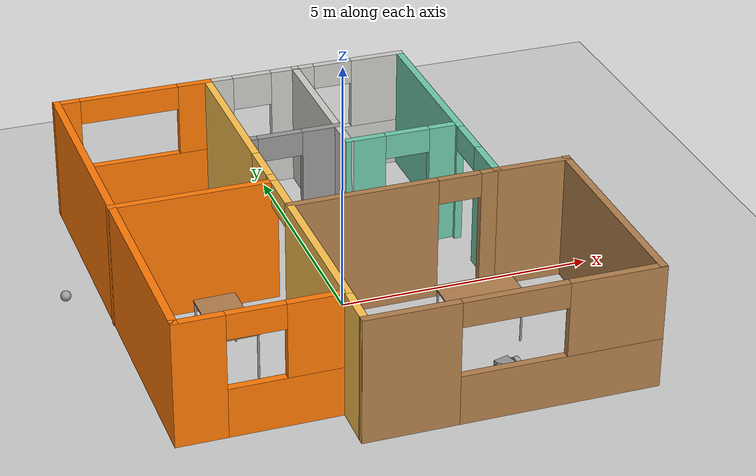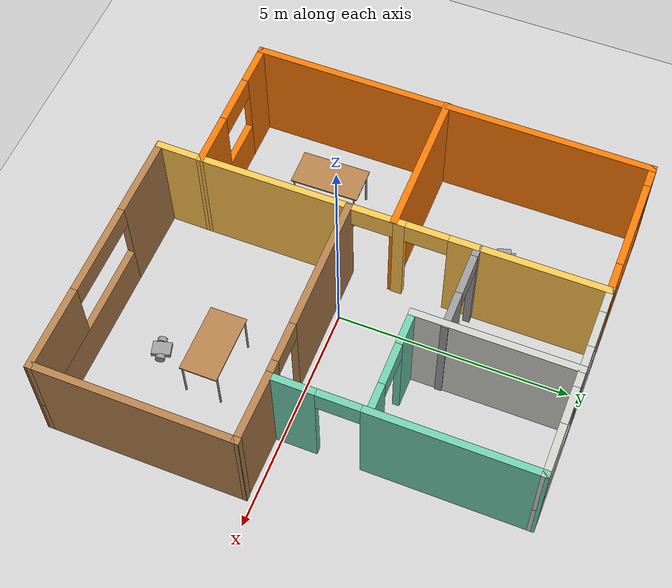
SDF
<sdf version="1.6">
 <world name="default">
  <plugin name="welcome" filename="libwelcome.so"/>
  <light name="sun" type="directional">
   <pose>0 0 10 0 -0 0</pose>
   <diffuse>0.8 0.8 0.8 1</diffuse>
   <specular>0.2 0.2 0.2 1</specular>
   <attenuation>
    <range>1000</range>
    <constant>0.9</constant>
    <linear>0.01</linear>
    <quadratic>0.001</quadratic>
   </attenuation>
   <direction>-0.5 0.1 -0.9</direction>
  </light>
  <model name="ground_plane">
   <static>1</static>
   <link name="link">
    <collision name="collision">
     <geometry><plane><normal>0 0 1</normal><size>100 100</size></plane></geometry>
     <surface>
      <contact><collide_bitmask>65535</collide_bitmask></contact>
      <friction><ode><mu>100</mu><mu2>50</mu2></ode></friction>
     </surface>
    </collision>
    <visual name="visual">
     <cast_shadows>0</cast_shadows>
     <geometry><plane><normal>0 0 1</normal><size>100 100</size></plane></geometry>
     <material>
      <script><uri>file://media/materials/scripts/gazebo.material</uri><name>Gazebo/Grey</name></script>
     </material>
    </visual>
   </link>
  </model>
  <gravity>0 0 -9.8</gravity>
  <magnetic_field>6e-06 2.3e-05 -4.2e-05</magnetic_field>
  <atmosphere type="adiabatic"/>
  <physics name="default_physics" default="0" type="ode">
   <max_step_size>0.001</max_step_size>
   <real_time_factor>1</real_time_factor>
   <real_time_update_rate>1000</real_time_update_rate>
  </physics>
  <scene><ambient>0.4 0.4 0.4 1</ambient><background>0.7 0.7 0.7 1</background><shadows>1</shadows></scene>
  <spherical_coordinates>
   <surface_model>EARTH_WGS84</surface_model>
   <latitude_deg>0</latitude_deg>
   <longitude_deg>0</longitude_deg>
   <elevation>0</elevation>
   <heading_deg>0</heading_deg>
  </spherical_coordinates>
  <model name="groundfloor">
   <pose>0.1056 0.395796 0 0 -0 0</pose>
   <link name="Wall_16">
    <collision name="Wall_16_Collision">
     <geometry><box><size>8.75 0.15 2.5</size></box></geometry>
     <pose>0 0 1.25 0 -0 0</pose>
    </collision>
    <visual name="Wall_16_Visual">
     <pose>0 0 1.25 0 -0 0</pose>
     <geometry><box><size>8.75 0.15 2.5</size></box></geometry>
     <material>
      <script><uri>file://media/materials/scripts/gazebo.material</uri><name>Gazebo/Grey</name></script>
      <ambient>0.996078 0.47451 0.0196078 1</ambient>
     </material>
     <meta><layer>0</layer></meta>
    </visual>
    <pose>-4.29827 0.476573 0 0 0 -1.5708</pose>
   </link>
   <link name="Wall_17">
    <pose>-2.74827 -3.82343 0 0 -0 0</pose>
    <visual name="Wall_17_Visual_0">
     <pose>-1.1364 0 1.25 0 -0 0</pose>
     <geometry><box><size>0.97721 0.15 2.5</size></box></geometry>
     <material>
      <script><uri>file://media/materials/scripts/gazebo.material</uri><name>Gazebo/Grey</name></script>
      <ambient>0.996078 0.47451 0.0196078 1</ambient>
     </material>
     <meta><layer>0</layer></meta>
    </visual>
    <collision name="Wall_17_Collision_0">
     <geometry><box><size>0.97721 0.15 2.5</size></box></geometry>
     <pose>-1.1364 0 1.25 0 -0 0</pose>
    </collision>
    <visual name="Wall_17_Visual_1">
     <pose>0.488605 0 0.5 0 -0 0</pose>
     <geometry><box><size>2.27279 0.15 1</size></box></geometry>
     <material>
      <script><uri>file://media/materials/scripts/gazebo.material</uri><name>Gazebo/Grey</name></script>
      <ambient>0.996078 0.47451 0.0196078 1</ambient>
     </material>
     <meta><layer>0</layer></meta>
    </visual>
    <collision name="Wall_17_Collision_1">
     <geometry><box><size>2.27279 0.15 1</size></box></geometry>
     <pose>0.488605 0 0.5 0 -0 0</pose>
    </collision>
    <visual name="Wall_17_Visual_2">
     <pose>1.0331 0 1.75 0 -0 0</pose>
     <geometry><box><size>1.18379 0.15 1.5</size></box></geometry>
     <material>
      <script><uri>file://media/materials/scripts/gazebo.material</uri><name>Gazebo/Grey</name></script>
      <ambient>0.996078 0.47451 0.0196078 1</ambient>
     </material>
     <meta><layer>0</layer></meta>
    </visual>
    <collision name="Wall_17_Collision_2">
     <geometry><box><size>1.18379 0.15 1.5</size></box></geometry>
     <pose>1.0331 0 1.75 0 -0 0</pose>
    </collision>
    <visual name="Wall_17_Visual_3">
     <pose>-0.10329 0 2.25 0 -0 0</pose>
     <geometry><box><size>1.089 0.15 0.5</size></box></geometry>
     <material>
      <script><uri>file://media/materials/scripts/gazebo.material</uri><name>Gazebo/Grey</name></script>
      <ambient>0.996078 0.47451 0.0196078 1</ambient>
     </material>
     <meta><layer>0</layer></meta>
    </visual>
    <collision name="Wall_17_Collision_3">
     <geometry><box><size>1.089 0.15 0.5</size></box></geometry>
     <pose>-0.10329 0 2.25 0 -0 0</pose>
    </collision>
   </link>
   <link name="Wall_18">
    <pose>-1.19827 0.476573 0 0 -0 1.5708</pose>
    <visual name="Wall_18_Visual_0">
     <pose>-2.69425 0 1.25 0 -0 0</pose>
     <geometry><box><size>3.3615 0.15 2.5</size></box></geometry>
     <material>
      <script><uri>file://media/materials/scripts/gazebo.material</uri><name>Gazebo/Grey</name></script>
      <ambient>1 0.764706 0.305882 1</ambient>
     </material>
     <meta><layer>0</layer></meta>
    </visual>
    <collision name="Wall_18_Collision_0">
     <geometry><box><size>3.3615 0.15 2.5</size></box></geometry>
     <pose>-2.69425 0 1.25 0 -0 0</pose>
    </collision>
    <visual name="Wall_18_Visual_1">
     <pose>0.008535 0 1.25 0 -0 0</pose>
     <geometry><box><size>0.244078 0.15 2.5</size></box></geometry>
     <material>
      <script><uri>file://media/materials/scripts/gazebo.material</uri><name>Gazebo/Grey</name></script>
      <ambient>1 0.764706 0.305882 1</ambient>
     </material>
     <meta><layer>0</layer></meta>
    </visual>
    <collision name="Wall_18_Collision_1">
     <geometry><box><size>0.244078 0.15 2.5</size></box></geometry>
     <pose>0.008535 0 1.25 0 -0 0</pose>
    </collision>
    <visual name="Wall_18_Visual_2">
     <pose>2.70279 0 1.25 0 -0 0</pose>
     <geometry><box><size>3.34443 0.15 2.5</size></box></geometry>
     <material>
      <script><uri>file://media/materials/scripts/gazebo.material</uri><name>Gazebo/Grey</name></script>
      <ambient>1 0.764706 0.305882 1</ambient>
     </material>
     <meta><layer>0</layer></meta>
    </visual>
    <collision name="Wall_18_Collision_2">
     <geometry><box><size>3.34443 0.15 2.5</size></box></geometry>
     <pose>2.70279 0 1.25 0 -0 0</pose>
    </collision>
    <visual name="Wall_18_Visual_3">
     <pose>-0.563504 0 2.25 0 -0 0</pose>
     <geometry><box><size>0.9 0.15 0.5</size></box></geometry>
     <material>
      <script><uri>file://media/materials/scripts/gazebo.material</uri><name>Gazebo/Grey</name></script>
      <ambient>1 0.764706 0.305882 1</ambient>
     </material>
     <meta><layer>0</layer></meta>
    </visual>
    <collision name="Wall_18_Collision_3">
     <geometry><box><size>0.9 0.15 0.5</size></box></geometry>
     <pose>-0.563504 0 2.25 0 -0 0</pose>
    </collision>
    <visual name="Wall_18_Visual_4">
     <pose>0.580574 0 2.25 0 -0 0</pose>
     <geometry><box><size>0.9 0.15 0.5</size></box></geometry>
     <material>
      <script><uri>file://media/materials/scripts/gazebo.material</uri><name>Gazebo/Grey</name></script>
      <ambient>1 0.764706 0.305882 1</ambient>
     </material>
     <meta><layer>0</layer></meta>
    </visual>
    <collision name="Wall_18_Collision_4">
     <geometry><box><size>0.9 0.15 0.5</size></box></geometry>
     <pose>0.580574 0 2.25 0 -0 0</pose>
    </collision>
   </link>
   <link name="Wall_19">
    <pose>0.851726 4.77657 0 0 -0 0</pose>
    <visual name="Wall_19_Visual_0">
     <pose>-1.82787 0 1.25 0 -0 0</pose>
     <geometry><box><size>0.594267 0.15 2.5</size></box></geometry>
     <material>
      <script><uri>file://media/materials/scripts/gazebo.material</uri><name>Gazebo/CeilingTiled</name></script>
      <ambient>0.435294 0.796078 0.67451 1</ambient>
     </material>
     <meta><layer>0</layer></meta>
    </visual>
    <collision name="Wall_19_Collision_0">
     <geometry><box><size>0.594267 0.15 2.5</size></box></geometry>
     <pose>-1.82787 0 1.25 0 -0 0</pose>
    </collision>
    <visual name="Wall_19_Visual_1">
     <pose>-0.671108 0 0.5 0 -0 0</pose>
     <geometry><box><size>1.71925 0.15 1</size></box></geometry>
     <material>
      <script><uri>file://media/materials/scripts/gazebo.material</uri><name>Gazebo/CeilingTiled</name></script>
      <ambient>0.435294 0.796078 0.67451 1</ambient>
     </material>
     <meta><layer>0</layer></meta>
    </visual>
    <collision name="Wall_19_Collision_1">
     <geometry><box><size>1.71925 0.15 1</size></box></geometry>
     <pose>-0.671108 0 0.5 0 -0 0</pose>
    </collision>
    <visual name="Wall_19_Visual_2">
     <pose>1.15676 0 0.5 0 -0 0</pose>
     <geometry><box><size>1.93648 0.15 1</size></box></geometry>
     <material>
      <script><uri>file://media/materials/scripts/gazebo.material</uri><name>Gazebo/CeilingTiled</name></script>
      <ambient>0.435294 0.796078 0.67451 1</ambient>
     </material>
     <meta><layer>0</layer></meta>
    </visual>
    <collision name="Wall_19_Collision_2">
     <geometry><box><size>1.93648 0.15 1</size></box></geometry>
     <pose>1.15676 0 0.5 0 -0 0</pose>
    </collision>
    <visual name="Wall_19_Visual_3">
     <pose>1.55676 0 1.75 0 -0 0</pose>
     <geometry><box><size>1.13648 0.15 1.5</size></box></geometry>
     <material>
      <script><uri>file://media/materials/scripts/gazebo.material</uri><name>Gazebo/CeilingTiled</name></script>
      <ambient>0.435294 0.796078 0.67451 1</ambient>
     </material>
     <meta><layer>0</layer></meta>
    </visual>
    <collision name="Wall_19_Collision_3">
     <geometry><box><size>1.13648 0.15 1.5</size></box></geometry>
     <pose>1.55676 0 1.75 0 -0 0</pose>
    </collision>
    <visual name="Wall_19_Visual_4">
     <pose>-0.271108 0 1.75 0 -0 0</pose>
     <geometry><box><size>0.91925 0.15 1.5</size></box></geometry>
     <material>
      <script><uri>file://media/materials/scripts/gazebo.material</uri><name>Gazebo/CeilingTiled</name></script>
      <ambient>0.435294 0.796078 0.67451 1</ambient>
     </material>
     <meta><layer>0</layer></meta>
    </visual>
    <collision name="Wall_19_Collision_4">
     <geometry><box><size>0.91925 0.15 1.5</size></box></geometry>
     <pose>-0.271108 0 1.75 0 -0 0</pose>
    </collision>
    <visual name="Wall_19_Visual_5">
     <pose>-0.271108 0 1.75 0 -0 0</pose>
     <geometry><box><size>0.91925 0.15 1.5</size></box></geometry>
     <material>
      <script><uri>file://media/materials/scripts/gazebo.material</uri><name>Gazebo/CeilingTiled</name></script>
      <ambient>0.435294 0.796078 0.67451 1</ambient>
     </material>
     <meta><layer>0</layer></meta>
    </visual>
    <collision name="Wall_19_Collision_5">
     <geometry><box><size>0.91925 0.15 1.5</size></box></geometry>
     <pose>-0.271108 0 1.75 0 -0 0</pose>
    </collision>
    <visual name="Wall_19_Visual_6">
     <pose>-1.13073 0 2.15 0 -0 0</pose>
     <geometry><box><size>0.8 0.15 0.7</size></box></geometry>
     <material>
      <script><uri>file://media/materials/scripts/gazebo.material</uri><name>Gazebo/CeilingTiled</name></script>
      <ambient>0.435294 0.796078 0.67451 1</ambient>
     </material>
     <meta><layer>0</layer></meta>
    </visual>
    <collision name="Wall_19_Collision_6">
     <geometry><box><size>0.8 0.15 0.7</size></box></geometry>
     <pose>-1.13073 0 2.15 0 -0 0</pose>
    </collision>
    <visual name="Wall_19_Visual_7">
     <pose>0.588517 0 2.25 0 -0 0</pose>
     <geometry><box><size>0.8 0.15 0.5</size></box></geometry>
     <material>
      <script><uri>file://media/materials/scripts/gazebo.material</uri><name>Gazebo/CeilingTiled</name></script>
      <ambient>0.435294 0.796078 0.67451 1</ambient>
     </material>
     <meta><layer>0</layer></meta>
    </visual>
    <collision name="Wall_19_Collision_7">
     <geometry><box><size>0.8 0.15 0.5</size></box></geometry>
     <pose>0.588517 0 2.25 0 -0 0</pose>
    </collision>
    <visual name="Wall_19_Visual_8">
     <pose>0.588517 0 2.25 0 -0 0</pose>
     <geometry><box><size>0.8 0.15 0.5</size></box></geometry>
     <material>
      <script><uri>file://media/materials/scripts/gazebo.material</uri><name>Gazebo/CeilingTiled</name></script>
      <ambient>0.435294 0.796078 0.67451 1</ambient>
     </material>
     <meta><layer>0</layer></meta>
    </visual>
    <collision name="Wall_19_Collision_8">
     <geometry><box><size>0.8 0.15 0.5</size></box></geometry>
     <pose>0.588517 0 2.25 0 -0 0</pose>
    </collision>
   </link>
   <link name="Wall_20">
    <pose>2.89412 2.1049 0 0 0 -1.57364</pose>
    <visual name="Wall_20_Visual_0">
     <pose>-0.956226 0 1.25 0 -0 0</pose>
     <geometry><box><size>3.58091 0.15 2.5</size></box></geometry>
     <material>
      <script><uri>file://media/materials/scripts/gazebo.material</uri><name>Gazebo/Grey</name></script>
      <ambient>0.435294 0.796078 0.67451 1</ambient>
     </material>
     <meta><layer>0</layer></meta>
    </visual>
    <collision name="Wall_20_Collision_0">
     <geometry><box><size>3.58091 0.15 2.5</size></box></geometry>
     <pose>-0.956226 0 1.25 0 -0 0</pose>
    </collision>
    <visual name="Wall_20_Visual_1">
     <pose>2.24045 0 1.25 0 -0 0</pose>
     <geometry><box><size>1.01245 0.15 2.5</size></box></geometry>
     <material>
      <script><uri>file://media/materials/scripts/gazebo.material</uri><name>Gazebo/Grey</name></script>
      <ambient>0.435294 0.796078 0.67451 1</ambient>
     </material>
     <meta><layer>0</layer></meta>
    </visual>
    <collision name="Wall_20_Collision_1">
     <geometry><box><size>1.01245 0.15 2.5</size></box></geometry>
     <pose>2.24045 0 1.25 0 -0 0</pose>
    </collision>
    <visual name="Wall_20_Visual_2">
     <pose>1.28423 0 2.25 0 -0 0</pose>
     <geometry><box><size>0.9 0.15 0.5</size></box></geometry>
     <material>
      <script><uri>file://media/materials/scripts/gazebo.material</uri><name>Gazebo/Grey</name></script>
      <ambient>0.435294 0.796078 0.67451 1</ambient>
     </material>
     <meta><layer>0</layer></meta>
    </visual>
    <collision name="Wall_20_Collision_2">
     <geometry><box><size>0.9 0.15 0.5</size></box></geometry>
     <pose>1.28423 0 2.25 0 -0 0</pose>
    </collision>
   </link>
   <link name="Wall_21">
    <collision name="Wall_21_Collision">
     <geometry><box><size>1.57628 0.15 2.5</size></box></geometry>
     <pose>0 0 1.25 0 -0 0</pose>
    </collision>
    <visual name="Wall_21_Visual">
     <pose>0 0 1.25 0 -0 0</pose>
     <geometry><box><size>1.57628 0.15 2.5</size></box></geometry>
     <material>
      <script><uri>file://media/materials/scripts/gazebo.material</uri><name>Gazebo/Wood</name></script>
      <ambient>1 0.764706 0.305882 1</ambient>
     </material>
     <meta><layer>0</layer></meta>
    </visual>
    <pose>3.59962 -0.589202 0 0 0 -0.010132</pose>
   </link>
   <link name="Wall_26">
    <collision name="Wall_26_Collision">
     <geometry><box><size>3.25 0.15 2.5</size></box></geometry>
     <pose>0 0 1.25 0 -0 0</pose>
    </collision>
    <visual name="Wall_26_Visual">
     <pose>0 0 1.25 0 -0 0</pose>
     <geometry><box><size>3.25 0.15 2.5</size></box></geometry>
     <material>
      <script><uri>file://media/materials/scripts/gazebo.material</uri><name>Gazebo/Grey</name></script>
      <ambient>0.996078 0.47451 0.0196078 1</ambient>
     </material>
     <meta><layer>0</layer></meta>
    </visual>
    <pose>-2.76348 0.366035 0 0 -0 0</pose>
   </link>
   <link name="Wall_28">
    <collision name="Wall_28_Collision">
     <geometry><box><size>3.5 0.15 2.5</size></box></geometry>
     <pose>0 0 1.25 0 -0 0</pose>
    </collision>
    <visual name="Wall_28_Visual">
     <pose>0 0 1.25 0 -0 0</pose>
     <geometry><box><size>3.5 0.15 2.5</size></box></geometry>
     <material>
      <script><uri>file://media/materials/scripts/gazebo.material</uri><name>Gazebo/CeilingTiled</name></script>
      <ambient>0.435294 0.796078 0.67451 1</ambient>
     </material>
     <meta><layer>0</layer></meta>
    </visual>
    <pose>0.64457 3.10157 0 0 0 -1.5708</pose>
   </link>
   <link name="Wall_29">
    <pose>1.69457 1.42657 0 0 -0 0</pose>
    <visual name="Wall_29_Visual_0">
     <pose>-0.719809 0 1.25 0 -0 0</pose>
     <geometry><box><size>0.810381 0.15 2.5</size></box></geometry>
     <material>
      <script><uri>file://media/materials/scripts/gazebo.material</uri><name>Gazebo/Grey</name></script>
      <ambient>0.435294 0.796078 0.67451 1</ambient>
     </material>
     <meta><layer>0</layer></meta>
    </visual>
    <collision name="Wall_29_Collision_0">
     <geometry><box><size>0.810381 0.15 2.5</size></box></geometry>
     <pose>-0.719809 0 1.25 0 -0 0</pose>
    </collision>
    <visual name="Wall_29_Visual_1">
     <pose>0.855191 0 1.25 0 -0 0</pose>
     <geometry><box><size>0.539619 0.15 2.5</size></box></geometry>
     <material>
      <script><uri>file://media/materials/scripts/gazebo.material</uri><name>Gazebo/Grey</name></script>
      <ambient>0.435294 0.796078 0.67451 1</ambient>
     </material>
     <meta><layer>0</layer></meta>
    </visual>
    <collision name="Wall_29_Collision_1">
     <geometry><box><size>0.539619 0.15 2.5</size></box></geometry>
     <pose>0.855191 0 1.25 0 -0 0</pose>
    </collision>
    <visual name="Wall_29_Visual_2">
     <pose>0.135381 0 2.25 0 -0 0</pose>
     <geometry><box><size>0.9 0.15 0.5</size></box></geometry>
     <material>
      <script><uri>file://media/materials/scripts/gazebo.material</uri><name>Gazebo/Grey</name></script>
      <ambient>0.435294 0.796078 0.67451 1</ambient>
     </material>
     <meta><layer>0</layer></meta>
    </visual>
    <collision name="Wall_29_Collision_2">
     <geometry><box><size>0.9 0.15 0.5</size></box></geometry>
     <pose>0.135381 0 2.25 0 -0 0</pose>
    </collision>
   </link>
   <link name="Wall_31">
    <pose>-0.25548 2.09983 0 0 -0 0</pose>
    <visual name="Wall_31_Visual_0">
     <pose>-0.865813 0 1.25 0 -0 0</pose>
     <geometry><box><size>0.268373 0.15 2.5</size></box></geometry>
     <material>
      <script><uri>file://media/materials/scripts/gazebo.material</uri><name>Gazebo/Grey</name></script>
      <ambient>1 1 1 1</ambient>
     </material>
     <meta><layer>0</layer></meta>
    </visual>
    <collision name="Wall_31_Collision_0">
     <geometry><box><size>0.268373 0.15 2.5</size></box></geometry>
     <pose>-0.865813 0 1.25 0 -0 0</pose>
    </collision>
    <visual name="Wall_31_Visual_1">
     <pose>0.584187 0 1.25 0 -0 0</pose>
     <geometry><box><size>0.831627 0.15 2.5</size></box></geometry>
     <material>
      <script><uri>file://media/materials/scripts/gazebo.material</uri><name>Gazebo/Grey</name></script>
      <ambient>1 1 1 1</ambient>
     </material>
     <meta><layer>0</layer></meta>
    </visual>
    <collision name="Wall_31_Collision_1">
     <geometry><box><size>0.831627 0.15 2.5</size></box></geometry>
     <pose>0.584187 0 1.25 0 -0 0</pose>
    </collision>
    <visual name="Wall_31_Visual_2">
     <pose>-0.281627 0 2.25 0 -0 0</pose>
     <geometry><box><size>0.9 0.15 0.5</size></box></geometry>
     <material>
      <script><uri>file://media/materials/scripts/gazebo.material</uri><name>Gazebo/Grey</name></script>
      <ambient>1 1 1 1</ambient>
     </material>
     <meta><layer>0</layer></meta>
    </visual>
    <collision name="Wall_31_Collision_2">
     <geometry><box><size>0.9 0.15 0.5</size></box></geometry>
     <pose>-0.281627 0 2.25 0 -0 0</pose>
    </collision>
   </link>
   <link name="Wall_33">
    <pose>0.855467 -0.593331 0 0 -0 0.005591</pose>
    <visual name="Wall_33_Visual_0">
     <pose>-0.629534 0 1.25 0 -0 0</pose>
     <geometry><box><size>2.9531 0.15 2.5</size></box></geometry>
     <material>
      <script><uri>file://media/materials/scripts/gazebo.material</uri><name>Gazebo/Wood</name></script>
      <ambient>1 0.764706 0.305882 1</ambient>
     </material>
     <meta><layer>0</layer></meta>
    </visual>
    <collision name="Wall_33_Collision_0">
     <geometry><box><size>2.9531 0.15 2.5</size></box></geometry>
     <pose>-0.629534 0 1.25 0 -0 0</pose>
    </collision>
    <visual name="Wall_33_Visual_1">
     <pose>1.90372 0 1.25 0 -0 0</pose>
     <geometry><box><size>0.404732 0.15 2.5</size></box></geometry>
     <material>
      <script><uri>file://media/materials/scripts/gazebo.material</uri><name>Gazebo/Wood</name></script>
      <ambient>1 0.764706 0.305882 1</ambient>
     </material>
     <meta><layer>0</layer></meta>
    </visual>
    <collision name="Wall_33_Collision_1">
     <geometry><box><size>0.404732 0.15 2.5</size></box></geometry>
     <pose>1.90372 0 1.25 0 -0 0</pose>
    </collision>
    <visual name="Wall_33_Visual_2">
     <pose>1.27418 0 2.25 0 -0 0</pose>
     <geometry><box><size>0.854336 0.15 0.5</size></box></geometry>
     <material>
      <script><uri>file://media/materials/scripts/gazebo.material</uri><name>Gazebo/Wood</name></script>
      <ambient>1 0.764706 0.305882 1</ambient>
     </material>
     <meta><layer>0</layer></meta>
    </visual>
    <collision name="Wall_33_Collision_2">
     <geometry><box><size>0.854336 0.15 0.5</size></box></geometry>
     <pose>1.27418 0 2.25 0 -0 0</pose>
    </collision>
   </link>
   <link name="Wall_35">
    <pose>-2.74827 4.77657 0 0 -0 0</pose>
    <visual name="Wall_35_Visual_0">
     <pose>-1.35587 0 1.25 0 -0 0</pose>
     <geometry><box><size>0.538249 0.15 2.5</size></box></geometry>
     <material>
      <script><uri>file://media/materials/scripts/gazebo.material</uri><name>Gazebo/Grey</name></script>
      <ambient>0.996078 0.47451 0.0196078 1</ambient>
     </material>
     <meta><layer>0</layer></meta>
    </visual>
    <collision name="Wall_35_Collision_0">
     <geometry><box><size>0.538249 0.15 2.5</size></box></geometry>
     <pose>-1.35587 0 1.25 0 -0 0</pose>
    </collision>
    <visual name="Wall_35_Visual_1">
     <pose>0.269125 0 0.5 0 -0 0</pose>
     <geometry><box><size>2.71175 0.15 1</size></box></geometry>
     <material>
      <script><uri>file://media/materials/scripts/gazebo.material</uri><name>Gazebo/Grey</name></script>
      <ambient>0.996078 0.47451 0.0196078 1</ambient>
     </material>
     <meta><layer>0</layer></meta>
    </visual>
    <collision name="Wall_35_Collision_1">
     <geometry><box><size>2.71175 0.15 1</size></box></geometry>
     <pose>0.269125 0 0.5 0 -0 0</pose>
    </collision>
    <visual name="Wall_35_Visual_2">
     <pose>1.26913 0 1.75 0 -0 0</pose>
     <geometry><box><size>0.711751 0.15 1.5</size></box></geometry>
     <material>
      <script><uri>file://media/materials/scripts/gazebo.material</uri><name>Gazebo/Grey</name></script>
      <ambient>0.996078 0.47451 0.0196078 1</ambient>
     </material>
     <meta><layer>0</layer></meta>
    </visual>
    <collision name="Wall_35_Collision_2">
     <geometry><box><size>0.711751 0.15 1.5</size></box></geometry>
     <pose>1.26913 0 1.75 0 -0 0</pose>
    </collision>
    <visual name="Wall_35_Visual_3">
     <pose>-0.086751 0 2.25 0 -0 0</pose>
     <geometry><box><size>2 0.15 0.5</size></box></geometry>
     <material>
      <script><uri>file://media/materials/scripts/gazebo.material</uri><name>Gazebo/Grey</name></script>
      <ambient>0.996078 0.47451 0.0196078 1</ambient>
     </material>
     <meta><layer>0</layer></meta>
    </visual>
    <collision name="Wall_35_Collision_3">
     <geometry><box><size>2 0.15 0.5</size></box></geometry>
     <pose>-0.086751 0 2.25 0 -0 0</pose>
    </collision>
   </link>
   <link name="Wall_37">
    <collision name="Wall_37_Collision">
     <geometry><box><size>1.06868 0.15 2.5</size></box></geometry>
     <pose>0 0 1.25 0 -0 0</pose>
    </collision>
    <visual name="Wall_37_Visual">
     <pose>0 0 1.25 0 -0 0</pose>
     <geometry><box><size>1.06868 0.15 2.5</size></box></geometry>
     <material>
      <script><uri>file://media/materials/scripts/gazebo.material</uri><name>Gazebo/Grey</name></script>
      <ambient>1 0.764706 0.305882 1</ambient>
     </material>
     <meta><layer>0</layer></meta>
    </visual>
    <pose>-1.20399 -4.28273 0 0 0 -1.58324</pose>
   </link>
   <link name="Wall_38">
    <pose>1.54579 -4.76497 0 0 0 -0.004173</pose>
    <visual name="Wall_38_Visual_0">
     <pose>-1.92017 0 1.25 0 -0 0</pose>
     <geometry><box><size>1.8207 0.15 2.5</size></box></geometry>
     <material>
      <script><uri>file://media/materials/scripts/gazebo.material</uri><name>Gazebo/Wood</name></script>
      <ambient>1 0.764706 0.305882 1</ambient>
     </material>
     <meta><layer>0</layer></meta>
    </visual>
    <collision name="Wall_38_Collision_0">
     <geometry><box><size>1.8207 0.15 2.5</size></box></geometry>
     <pose>-1.92017 0 1.25 0 -0 0</pose>
    </collision>
    <visual name="Wall_38_Visual_1">
     <pose>0.910351 0 0.5 0 -0 0</pose>
     <geometry><box><size>3.84035 0.15 1</size></box></geometry>
     <material>
      <script><uri>file://media/materials/scripts/gazebo.material</uri><name>Gazebo/Wood</name></script>
      <ambient>1 0.764706 0.305882 1</ambient>
     </material>
     <meta><layer>0</layer></meta>
    </visual>
    <collision name="Wall_38_Collision_1">
     <geometry><box><size>3.84035 0.15 1</size></box></geometry>
     <pose>0.910351 0 0.5 0 -0 0</pose>
    </collision>
    <visual name="Wall_38_Visual_2">
     <pose>1.91035 0 1.75 0 -0 0</pose>
     <geometry><box><size>1.84035 0.15 1.5</size></box></geometry>
     <material>
      <script><uri>file://media/materials/scripts/gazebo.material</uri><name>Gazebo/Wood</name></script>
      <ambient>1 0.764706 0.305882 1</ambient>
     </material>
     <meta><layer>0</layer></meta>
    </visual>
    <collision name="Wall_38_Collision_2">
     <geometry><box><size>1.84035 0.15 1.5</size></box></geometry>
     <pose>1.91035 0 1.75 0 -0 0</pose>
    </collision>
    <visual name="Wall_38_Visual_3">
     <pose>-0.009823 0 2.25 0 -0 0</pose>
     <geometry><box><size>2 0.15 0.5</size></box></geometry>
     <material>
      <script><uri>file://media/materials/scripts/gazebo.material</uri><name>Gazebo/Wood</name></script>
      <ambient>1 0.764706 0.305882 1</ambient>
     </material>
     <meta><layer>0</layer></meta>
    </visual>
    <collision name="Wall_38_Collision_3">
     <geometry><box><size>2 0.15 0.5</size></box></geometry>
     <pose>-0.009823 0 2.25 0 -0 0</pose>
    </collision>
   </link>
   <link name="Wall_39">
    <collision name="Wall_39_Collision">
     <geometry><box><size>4.33013 0.15 2.5</size></box></geometry>
     <pose>0 0 1.25 0 -0 0</pose>
    </collision>
    <visual name="Wall_39_Visual">
     <pose>0 0 1.25 0 -0 0</pose>
     <geometry><box><size>4.33013 0.15 2.5</size></box></geometry>
     <material>
      <script><uri>file://media/materials/scripts/gazebo.material</uri><name>Gazebo/Wood</name></script>
      <ambient>1 0.764706 0.305882 1</ambient>
     </material>
     <meta><layer>0</layer></meta>
    </visual>
    <pose>4.30701 -2.67498 0 0 -0 1.56806</pose>
   </link>
   <static>1</static>
  </model>
  <model name="table">
   <static>1</static>
   <link name="link">
    <collision name="surface">
     <pose>0 0 1 0 -0 0</pose>
     <geometry><box><size>1.5 0.8 0.03</size></box></geometry>
     <surface><friction><ode><mu>0.6</mu><mu2>0.6</mu2></ode></friction></surface>
    </collision>
    <visual name="visual1">
     <pose>0 0 1 0 -0 0</pose>
     <geometry><box><size>1.5 0.8 0.03</size></box></geometry>
     <material>
      <script><uri>file://media/materials/scripts/gazebo.material</uri><name>Gazebo/Wood</name></script>
     </material>
    </visual>
    <collision name="front_left_leg">
     <pose>0.68 0.38 0.5 0 -0 0</pose>
     <geometry><cylinder><radius>0.02</radius><length>1</length></cylinder></geometry>
    </collision>
    <visual name="front_left_leg">
     <pose>0.68 0.38 0.5 0 -0 0</pose>
     <geometry><cylinder><radius>0.02</radius><length>1</length></cylinder></geometry>
     <material>
      <script><uri>file://media/materials/scripts/gazebo.material</uri><name>Gazebo/Grey</name></script>
     </material>
    </visual>
    <collision name="front_right_leg">
     <pose>0.68 -0.38 0.5 0 -0 0</pose>
     <geometry><cylinder><radius>0.02</radius><length>1</length></cylinder></geometry>
    </collision>
    <visual name="front_right_leg">
     <pose>0.68 -0.38 0.5 0 -0 0</pose>
     <geometry><cylinder><radius>0.02</radius><length>1</length></cylinder></geometry>
     <material>
      <script><uri>file://media/materials/scripts/gazebo.material</uri><name>Gazebo/Grey</name></script>
     </material>
    </visual>
    <collision name="back_right_leg">
     <pose>-0.68 -0.38 0.5 0 -0 0</pose>
     <geometry><cylinder><radius>0.02</radius><length>1</length></cylinder></geometry>
    </collision>
    <visual name="back_right_leg">
     <pose>-0.68 -0.38 0.5 0 -0 0</pose>
     <geometry><cylinder><radius>0.02</radius><length>1</length></cylinder></geometry>
     <material>
      <script><uri>file://media/materials/scripts/gazebo.material</uri><name>Gazebo/Grey</name></script>
     </material>
    </visual>
    <collision name="back_left_leg">
     <pose>-0.68 0.38 0.5 0 -0 0</pose>
     <geometry><cylinder><radius>0.02</radius><length>1</length></cylinder></geometry>
    </collision>
    <visual name="back_left_leg">
     <pose>-0.68 0.38 0.5 0 -0 0</pose>
     <geometry><cylinder><radius>0.02</radius><length>1</length></cylinder></geometry>
     <material>
      <script><uri>file://media/materials/scripts/gazebo.material</uri><name>Gazebo/Grey</name></script>
     </material>
    </visual>
   </link>
   <pose>2.0266 -1.86558 0 0 -0 0</pose>
  </model>
  <model name="table_0">
   <static>1</static>
   <link name="link">
    <collision name="surface">
     <pose>0 0 1 0 -0 0</pose>
     <geometry><box><size>1.5 0.8 0.03</size></box></geometry>
     <surface><friction><ode><mu>0.6</mu><mu2>0.6</mu2></ode></friction></surface>
    </collision>
    <visual name="visual1">
     <pose>0 0 1 0 -0 0</pose>
     <geometry><box><size>1.5 0.8 0.03</size></box></geometry>
     <material>
      <script><uri>file://media/materials/scripts/gazebo.material</uri><name>Gazebo/Wood</name></script>
     </material>
    </visual>
    <collision name="front_left_leg">
     <pose>0.68 0.38 0.5 0 -0 0</pose>
     <geometry><cylinder><radius>0.02</radius><length>1</length></cylinder></geometry>
    </collision>
    <visual name="front_left_leg">
     <pose>0.68 0.38 0.5 0 -0 0</pose>
     <geometry><cylinder><radius>0.02</radius><length>1</length></cylinder></geometry>
     <material>
      <script><uri>file://media/materials/scripts/gazebo.material</uri><name>Gazebo/Grey</name></script>
     </material>
    </visual>
    <collision name="front_right_leg">
     <pose>0.68 -0.38 0.5 0 -0 0</pose>
     <geometry><cylinder><radius>0.02</radius><length>1</length></cylinder></geometry>
    </collision>
    <visual name="front_right_leg">
     <pose>0.68 -0.38 0.5 0 -0 0</pose>
     <geometry><cylinder><radius>0.02</radius><length>1</length></cylinder></geometry>
     <material>
      <script><uri>file://media/materials/scripts/gazebo.material</uri><name>Gazebo/Grey</name></script>
     </material>
    </visual>
    <collision name="back_right_leg">
     <pose>-0.68 -0.38 0.5 0 -0 0</pose>
     <geometry><cylinder><radius>0.02</radius><length>1</length></cylinder></geometry>
    </collision>
    <visual name="back_right_leg">
     <pose>-0.68 -0.38 0.5 0 -0 0</pose>
     <geometry><cylinder><radius>0.02</radius><length>1</length></cylinder></geometry>
     <material>
      <script><uri>file://media/materials/scripts/gazebo.material</uri><name>Gazebo/Grey</name></script>
     </material>
    </visual>
    <collision name="back_left_leg">
     <pose>-0.68 0.38 0.5 0 -0 0</pose>
     <geometry><cylinder><radius>0.02</radius><length>1</length></cylinder></geometry>
    </collision>
    <visual name="back_left_leg">
     <pose>-0.68 0.38 0.5 0 -0 0</pose>
     <geometry><cylinder><radius>0.02</radius><length>1</length></cylinder></geometry>
     <material>
      <script><uri>file://media/materials/scripts/gazebo.material</uri><name>Gazebo/Grey</name></script>
     </material>
    </visual>
   </link>
   <pose>-2.64699 -1.24933 0 0 -0 1.58495</pose>
  </model>
  <model name="myrobot">
   <link name="link_0">
    <pose>-0 0.00666 0.002894 0 -0 0</pose>
    <inertial>
     <mass>1</mass>
     <inertia>
      <ixx>0.166667</ixx>
      <ixy>0</ixy>
      <ixz>0</ixz>
      <iyy>0.166667</iyy>
      <iyz>0</iyz>
      <izz>0.166667</izz>
     </inertia>
    </inertial>
    <visual name="visual">
     <geometry><box><size>0.3 0.4 0.1</size></box></geometry>
     <material>
      <lighting>1</lighting>
      <script><uri>file://media/materials/scripts/gazebo.material</uri><name>Gazebo/Grey</name></script>
      <shader type="pixel"><normal_map>__default__</normal_map></shader>
      <ambient>0.3 0.3 0.3 1</ambient>
      <diffuse>0.7 0.7 0.7 1</diffuse>
      <specular>0.01 0.01 0.01 1</specular>
      <emissive>0 0 0 1</emissive>
     </material>
    </visual>
    <collision name="collision">
     <geometry><box><size>0.3 0.4 0.2</size></box></geometry>
     <surface>
      <friction>
       <ode><mu>1</mu><mu2>1</mu2><fdir1>0 0 0</fdir1><slip1>0</slip1><slip2>0</slip2></ode>
       <torsional>
        <coefficient>1</coefficient>
        <patch_radius>0</patch_radius>
        <surface_radius>0</surface_radius>
        <use_patch_radius>1</use_patch_radius>
        <ode><slip>0</slip></ode>
       </torsional>
      </friction>
      <bounce><restitution_coefficient>0</restitution_coefficient><threshold>1e+06</threshold></bounce>
      <contact>
       <collide_without_contact>0</collide_without_contact>
       <collide_without_contact_bitmask>1</collide_without_contact_bitmask>
       <collide_bitmask>1</collide_bitmask>
       <ode>
        <soft_cfm>0</soft_cfm>
        <soft_erp>0.2</soft_erp>
        <kp>1e+13</kp>
        <kd>1</kd>
        <max_vel>0.01</max_vel>
        <min_depth>0</min_depth>
       </ode>
       <bullet>
        <split_impulse>1</split_impulse>
        <split_impulse_penetration_threshold>-0.01</split_impulse_penetration_threshold>
        <soft_cfm>0</soft_cfm>
        <soft_erp>0.2</soft_erp>
        <kp>1e+13</kp>
        <kd>1</kd>
       </bullet>
      </contact>
     </surface>
    </collision>
   </link>
   <link name="link_1">
    <pose>-0.2 -0.01332 -0.001447 0 -0 0</pose>
    <inertial>
     <mass>1</mass>
     <inertia><ixx>0.145833</ixx><ixy>0</ixy><ixz>0</ixz><iyy>0.145833</iyy><iyz>0</iyz><izz>0.125</izz></inertia>
    </inertial>
    <visual name="visual">
     <pose>0 0 0 1.57 -0 1.57</pose>
     <geometry><cylinder><radius>0.1</radius><length>0.1</length></cylinder></geometry>
     <material>
      <lighting>1</lighting>
      <script><uri>file://media/materials/scripts/gazebo.material</uri><name>Gazebo/Grey</name></script>
      <shader type="pixel"><normal_map>__default__</normal_map></shader>
      <ambient>0.3 0.3 0.3 1</ambient>
      <diffuse>0.7 0.7 0.7 1</diffuse>
      <specular>0.01 0.01 0.01 1</specular>
      <emissive>0 0 0 1</emissive>
     </material>
    </visual>
    <collision name="collision">
     <pose>0 0 0 1.57 -0 1.57</pose>
     <geometry><cylinder><radius>0.1</radius><length>0.1</length></cylinder></geometry>
     <surface>
      <friction>
       <ode><mu>1</mu><mu2>1</mu2><fdir1>0 0 0</fdir1><slip1>0</slip1><slip2>0</slip2></ode>
       <torsional>
        <coefficient>1</coefficient>
        <patch_radius>0</patch_radius>
        <surface_radius>0</surface_radius>
        <use_patch_radius>1</use_patch_radius>
        <ode><slip>0</slip></ode>
       </torsional>
      </friction>
      <bounce><restitution_coefficient>0</restitution_coefficient><threshold>1e+06</threshold></bounce>
      <contact>
       <collide_without_contact>0</collide_without_contact>
       <collide_without_contact_bitmask>1</collide_without_contact_bitmask>
       <collide_bitmask>1</collide_bitmask>
       <ode>
        <soft_cfm>0</soft_cfm>
        <soft_erp>0.2</soft_erp>
        <kp>1e+13</kp>
        <kd>1</kd>
        <max_vel>0.01</max_vel>
        <min_depth>0</min_depth>
       </ode>
       <bullet>
        <split_impulse>1</split_impulse>
        <split_impulse_penetration_threshold>-0.01</split_impulse_penetration_threshold>
        <soft_cfm>0</soft_cfm>
        <soft_erp>0.2</soft_erp>
        <kp>1e+13</kp>
        <kd>1</kd>
       </bullet>
      </contact>
     </surface>
    </collision>
   </link>
   <link name="link_1_clone">
    <pose>0.2 0.00666 -0.001447 0 -0 0</pose>
    <inertial>
     <mass>1</mass>
     <inertia><ixx>0.145833</ixx><ixy>0</ixy><ixz>0</ixz><iyy>0.145833</iyy><iyz>0</iyz><izz>0.125</izz></inertia>
    </inertial>
    <visual name="visual">
     <pose>0 0 0 1.57 -0 1.57</pose>
     <geometry><cylinder><radius>0.1</radius><length>0.1</length></cylinder></geometry>
     <material>
      <lighting>1</lighting>
      <script><uri>file://media/materials/scripts/gazebo.material</uri><name>Gazebo/Grey</name></script>
      <shader type="pixel"><normal_map>__default__</normal_map></shader>
      <ambient>0.3 0.3 0.3 1</ambient>
      <diffuse>0.7 0.7 0.7 1</diffuse>
      <specular>0.01 0.01 0.01 1</specular>
      <emissive>0 0 0 1</emissive>
     </material>
    </visual>
    <collision name="collision">
     <pose>0 0 0 1.57 -0 1.57</pose>
     <geometry><cylinder><radius>0.1</radius><length>0.1</length></cylinder></geometry>
     <surface>
      <friction>
       <ode><mu>1</mu><mu2>1</mu2><fdir1>0 0 0</fdir1><slip1>0</slip1><slip2>0</slip2></ode>
       <torsional>
        <coefficient>1</coefficient>
        <patch_radius>0</patch_radius>
        <surface_radius>0</surface_radius>
        <use_patch_radius>1</use_patch_radius>
        <ode><slip>0</slip></ode>
       </torsional>
      </friction>
      <bounce><restitution_coefficient>0</restitution_coefficient><threshold>1e+06</threshold></bounce>
      <contact>
       <collide_without_contact>0</collide_without_contact>
       <collide_without_contact_bitmask>1</collide_without_contact_bitmask>
       <collide_bitmask>1</collide_bitmask>
       <ode>
        <soft_cfm>0</soft_cfm>
        <soft_erp>0.2</soft_erp>
        <kp>1e+13</kp>
        <kd>1</kd>
        <max_vel>0.01</max_vel>
        <min_depth>0</min_depth>
       </ode>
       <bullet>
        <split_impulse>1</split_impulse>
        <split_impulse_penetration_threshold>-0.01</split_impulse_penetration_threshold>
        <soft_cfm>0</soft_cfm>
        <soft_erp>0.2</soft_erp>
        <kp>1e+13</kp>
        <kd>1</kd>
       </bullet>
      </contact>
     </surface>
    </collision>
   </link>
   <joint name="link_0_JOINT_0" type="revolute">
    <parent>link_0</parent>
    <child>link_1</child>
    <axis>
     <xyz>1 0 0</xyz>
     <use_parent_model_frame>0</use_parent_model_frame>
     <limit>
      <lower>-1.79769e+308</lower>
      <upper>1.79769e+308</upper>
      <effort>-1</effort>
      <velocity>-1</velocity>
     </limit>
     <dynamics>
      <spring_reference>0</spring_reference>
      <spring_stiffness>0</spring_stiffness>
      <damping>0</damping>
     </dynamics>
    </axis>
    <physics>
     <ode><limit><cfm>0</cfm><erp>0.2</erp></limit><suspension><cfm>0</cfm><erp>0.2</erp></suspension></ode>
    </physics>
   </joint>
   <joint name="link_0_JOINT_1" type="revolute">
    <parent>link_0</parent>
    <child>link_1_clone</child>
    <axis>
     <xyz>1 0 0</xyz>
     <use_parent_model_frame>0</use_parent_model_frame>
     <limit>
      <lower>-1.79769e+308</lower>
      <upper>1.79769e+308</upper>
      <effort>-1</effort>
      <velocity>-1</velocity>
     </limit>
     <dynamics>
      <spring_reference>0</spring_reference>
      <spring_stiffness>0</spring_stiffness>
      <damping>0</damping>
     </dynamics>
    </axis>
    <physics>
     <ode><limit><cfm>0</cfm><erp>0.2</erp></limit><suspension><cfm>0</cfm><erp>0.2</erp></suspension></ode>
    </physics>
   </joint>
   <static>0</static>
   <pose>2.09577 -3.09026 0.101443 -0.020234 -0.001161 0.27931</pose>
  </model>
  <model name="myrobot_clone">
   <link name="link_0">
    <pose>-0 0.00666 0.002894 0 -0 0</pose>
    <inertial>
     <mass>1</mass>
     <inertia>
      <ixx>0.166667</ixx>
      <ixy>0</ixy>
      <ixz>0</ixz>
      <iyy>0.166667</iyy>
      <iyz>0</iyz>
      <izz>0.166667</izz>
     </inertia>
    </inertial>
    <visual name="visual">
     <geometry><box><size>0.3 0.4 0.1</size></box></geometry>
     <material>
      <lighting>1</lighting>
      <script><uri>file://media/materials/scripts/gazebo.material</uri><name>Gazebo/Grey</name></script>
      <shader type="pixel"><normal_map>__default__</normal_map></shader>
      <ambient>0.3 0.3 0.3 1</ambient>
      <diffuse>0.7 0.7 0.7 1</diffuse>
      <specular>0.01 0.01 0.01 1</specular>
      <emissive>0 0 0 1</emissive>
     </material>
    </visual>
    <collision name="collision">
     <geometry><box><size>0.3 0.4 0.2</size></box></geometry>
     <surface>
      <friction>
       <ode><mu>1</mu><mu2>1</mu2><fdir1>0 0 0</fdir1><slip1>0</slip1><slip2>0</slip2></ode>
       <torsional>
        <coefficient>1</coefficient>
        <patch_radius>0</patch_radius>
        <surface_radius>0</surface_radius>
        <use_patch_radius>1</use_patch_radius>
        <ode><slip>0</slip></ode>
       </torsional>
      </friction>
      <bounce><restitution_coefficient>0</restitution_coefficient><threshold>1e+06</threshold></bounce>
      <contact>
       <collide_without_contact>0</collide_without_contact>
       <collide_without_contact_bitmask>1</collide_without_contact_bitmask>
       <collide_bitmask>1</collide_bitmask>
       <ode>
        <soft_cfm>0</soft_cfm>
        <soft_erp>0.2</soft_erp>
        <kp>1e+13</kp>
        <kd>1</kd>
        <max_vel>0.01</max_vel>
        <min_depth>0</min_depth>
       </ode>
       <bullet>
        <split_impulse>1</split_impulse>
        <split_impulse_penetration_threshold>-0.01</split_impulse_penetration_threshold>
        <soft_cfm>0</soft_cfm>
        <soft_erp>0.2</soft_erp>
        <kp>1e+13</kp>
        <kd>1</kd>
       </bullet>
      </contact>
     </surface>
    </collision>
   </link>
   <link name="link_1">
    <pose>-0.2 -0.01332 -0.001447 0 -0 0</pose>
    <inertial>
     <mass>1</mass>
     <inertia><ixx>0.145833</ixx><ixy>0</ixy><ixz>0</ixz><iyy>0.145833</iyy><iyz>0</iyz><izz>0.125</izz></inertia>
    </inertial>
    <visual name="visual">
     <pose>0 0 0 1.57 -0 1.57</pose>
     <geometry><cylinder><radius>0.1</radius><length>0.1</length></cylinder></geometry>
     <material>
      <lighting>1</lighting>
      <script><uri>file://media/materials/scripts/gazebo.material</uri><name>Gazebo/Grey</name></script>
      <shader type="pixel"><normal_map>__default__</normal_map></shader>
      <ambient>0.3 0.3 0.3 1</ambient>
      <diffuse>0.7 0.7 0.7 1</diffuse>
      <specular>0.01 0.01 0.01 1</specular>
      <emissive>0 0 0 1</emissive>
     </material>
    </visual>
    <collision name="collision">
     <pose>0 0 0 1.57 -0 1.57</pose>
     <geometry><cylinder><radius>0.1</radius><length>0.1</length></cylinder></geometry>
     <surface>
      <friction>
       <ode><mu>1</mu><mu2>1</mu2><fdir1>0 0 0</fdir1><slip1>0</slip1><slip2>0</slip2></ode>
       <torsional>
        <coefficient>1</coefficient>
        <patch_radius>0</patch_radius>
        <surface_radius>0</surface_radius>
        <use_patch_radius>1</use_patch_radius>
        <ode><slip>0</slip></ode>
       </torsional>
      </friction>
      <bounce><restitution_coefficient>0</restitution_coefficient><threshold>1e+06</threshold></bounce>
      <contact>
       <collide_without_contact>0</collide_without_contact>
       <collide_without_contact_bitmask>1</collide_without_contact_bitmask>
       <collide_bitmask>1</collide_bitmask>
       <ode>
        <soft_cfm>0</soft_cfm>
        <soft_erp>0.2</soft_erp>
        <kp>1e+13</kp>
        <kd>1</kd>
        <max_vel>0.01</max_vel>
        <min_depth>0</min_depth>
       </ode>
       <bullet>
        <split_impulse>1</split_impulse>
        <split_impulse_penetration_threshold>-0.01</split_impulse_penetration_threshold>
        <soft_cfm>0</soft_cfm>
        <soft_erp>0.2</soft_erp>
        <kp>1e+13</kp>
        <kd>1</kd>
       </bullet>
      </contact>
     </surface>
    </collision>
   </link>
   <link name="link_1_clone">
    <pose>0.2 0.00666 -0.001447 0 -0 0</pose>
    <inertial>
     <mass>1</mass>
     <inertia><ixx>0.145833</ixx><ixy>0</ixy><ixz>0</ixz><iyy>0.145833</iyy><iyz>0</iyz><izz>0.125</izz></inertia>
    </inertial>
    <visual name="visual">
     <pose>0 0 0 1.57 -0 1.57</pose>
     <geometry><cylinder><radius>0.1</radius><length>0.1</length></cylinder></geometry>
     <material>
      <lighting>1</lighting>
      <script><uri>file://media/materials/scripts/gazebo.material</uri><name>Gazebo/Grey</name></script>
      <shader type="pixel"><normal_map>__default__</normal_map></shader>
      <ambient>0.3 0.3 0.3 1</ambient>
      <diffuse>0.7 0.7 0.7 1</diffuse>
      <specular>0.01 0.01 0.01 1</specular>
      <emissive>0 0 0 1</emissive>
     </material>
    </visual>
    <collision name="collision">
     <pose>0 0 0 1.57 -0 1.57</pose>
     <geometry><cylinder><radius>0.1</radius><length>0.1</length></cylinder></geometry>
     <surface>
      <friction>
       <ode><mu>1</mu><mu2>1</mu2><fdir1>0 0 0</fdir1><slip1>0</slip1><slip2>0</slip2></ode>
       <torsional>
        <coefficient>1</coefficient>
        <patch_radius>0</patch_radius>
        <surface_radius>0</surface_radius>
        <use_patch_radius>1</use_patch_radius>
        <ode><slip>0</slip></ode>
       </torsional>
      </friction>
      <bounce><restitution_coefficient>0</restitution_coefficient><threshold>1e+06</threshold></bounce>
      <contact>
       <collide_without_contact>0</collide_without_contact>
       <collide_without_contact_bitmask>1</collide_without_contact_bitmask>
       <collide_bitmask>1</collide_bitmask>
       <ode>
        <soft_cfm>0</soft_cfm>
        <soft_erp>0.2</soft_erp>
        <kp>1e+13</kp>
        <kd>1</kd>
        <max_vel>0.01</max_vel>
        <min_depth>0</min_depth>
       </ode>
       <bullet>
        <split_impulse>1</split_impulse>
        <split_impulse_penetration_threshold>-0.01</split_impulse_penetration_threshold>
        <soft_cfm>0</soft_cfm>
        <soft_erp>0.2</soft_erp>
        <kp>1e+13</kp>
        <kd>1</kd>
       </bullet>
      </contact>
     </surface>
    </collision>
   </link>
   <joint name="link_0_JOINT_0" type="revolute">
    <parent>link_0</parent>
    <child>link_1</child>
    <axis>
     <xyz>1 0 0</xyz>
     <use_parent_model_frame>0</use_parent_model_frame>
     <limit>
      <lower>-1.79769e+308</lower>
      <upper>1.79769e+308</upper>
      <effort>-1</effort>
      <velocity>-1</velocity>
     </limit>
     <dynamics>
      <spring_reference>0</spring_reference>
      <spring_stiffness>0</spring_stiffness>
      <damping>0</damping>
     </dynamics>
    </axis>
    <physics>
     <ode><limit><cfm>0</cfm><erp>0.2</erp></limit><suspension><cfm>0</cfm><erp>0.2</erp></suspension></ode>
    </physics>
   </joint>
   <joint name="link_0_JOINT_1" type="revolute">
    <parent>link_0</parent>
    <child>link_1_clone</child>
    <axis>
     <xyz>1 0 0</xyz>
     <use_parent_model_frame>0</use_parent_model_frame>
     <limit>
      <lower>-1.79769e+308</lower>
      <upper>1.79769e+308</upper>
      <effort>-1</effort>
      <velocity>-1</velocity>
     </limit>
     <dynamics>
      <spring_reference>0</spring_reference>
      <spring_stiffness>0</spring_stiffness>
      <damping>0</damping>
     </dynamics>
    </axis>
    <physics>
     <ode><limit><cfm>0</cfm><erp>0.2</erp></limit><suspension><cfm>0</cfm><erp>0.2</erp></suspension></ode>
    </physics>
   </joint>
   <static>0</static>
   <pose>-2.61478 2.74895 0.101448 -0.020037 -0.001129 -1.28364</pose>
  </model>
  <model name="my_ball">
   <link name="link_0">
    <inertial>
     <mass>1</mass>
     <inertia><ixx>0.1</ixx><ixy>0</ixy><ixz>0</ixz><iyy>0.1</iyy><iyz>0</iyz><izz>0.1</izz></inertia>
    </inertial>
    <visual name="visual">
     <geometry><sphere><radius>0.1</radius></sphere></geometry>
     <material>
      <lighting>1</lighting>
      <script><uri>file://media/materials/scripts/gazebo.material</uri><name>Gazebo/Grey</name></script>
      <shader type="pixel"><normal_map>__default__</normal_map></shader>
      <ambient>1 1 1 1</ambient>
      <diffuse>1 1 1 1</diffuse>
      <specular>1 1 1 1</specular>
      <emissive>1 1 1 1</emissive>
     </material>
    </visual>
    <collision name="collision">
     <geometry><sphere><radius>0.1</radius></sphere></geometry>
     <surface>
      <friction>
       <ode><mu>1</mu><mu2>1</mu2><fdir1>0 0 0</fdir1><slip1>0</slip1><slip2>0</slip2></ode>
       <torsional>
        <coefficient>1</coefficient>
        <patch_radius>0</patch_radius>
        <surface_radius>0</surface_radius>
        <use_patch_radius>1</use_patch_radius>
        <ode><slip>0</slip></ode>
       </torsional>
      </friction>
      <bounce><restitution_coefficient>0</restitution_coefficient><threshold>1e+06</threshold></bounce>
      <contact>
       <collide_without_contact>0</collide_without_contact>
       <collide_without_contact_bitmask>1</collide_without_contact_bitmask>
       <collide_bitmask>1</collide_bitmask>
       <ode>
        <soft_cfm>0</soft_cfm>
        <soft_erp>0.2</soft_erp>
        <kp>1e+13</kp>
        <kd>1</kd>
        <max_vel>0.01</max_vel>
        <min_depth>0</min_depth>
       </ode>
       <bullet>
        <split_impulse>1</split_impulse>
        <split_impulse_penetration_threshold>-0.01</split_impulse_penetration_threshold>
        <soft_cfm>0</soft_cfm>
        <soft_erp>0.2</soft_erp>
        <kp>1e+13</kp>
        <kd>1</kd>
       </bullet>
      </contact>
     </surface>
    </collision>
   </link>
   <static>0</static>
   <pose>-5.19793 0.484546 0.957968 0 -0 0</pose>
  </model>
 </world>
</sdf>
